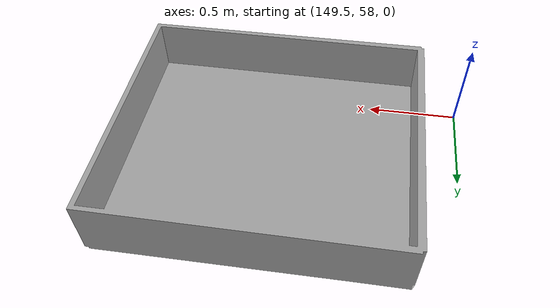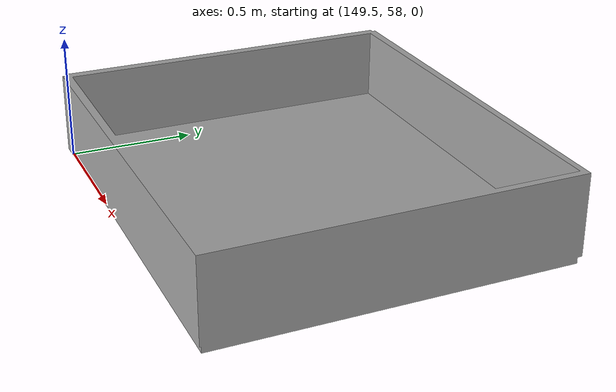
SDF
<sdf version="1.6">
 <world name="default">
  <model name="Red_Mailbox">
   <link name="link">
    <inertial>
     <mass>40</mass>
     <inertia><ixx>0.5</ixx><ixy>0</ixy><ixz>0</ixz><iyy>0.5</iyy><iyz>0</iyz><izz>1</izz></inertia>
    </inertial>
    <visual name="ModelPreview_1::link::visual_1">
     <geometry><mesh><uri>model://Red_Mailbox/meshes/red.dae</uri><scale>1 1 1</scale></mesh></geometry>
     <material><shader type="pixel"/></material>
    </visual>
    <visual name="visual">
     <geometry><mesh><uri>model://Red_Mailbox/meshes/red.dae</uri><scale>1 1 1</scale></mesh></geometry>
     <material>
      <emissive>1 0 0 0</emissive>
      <shader type="vertex"><normal_map>__default__</normal_map></shader>
     </material>
    </visual>
    <collision name="collision">
     <geometry><box><size>0.75 0.65 0.3</size></box></geometry>
     <surface>
      <friction>
       <ode><mu>1</mu><mu2>1</mu2><fdir1>0 0 0</fdir1><slip1>0</slip1><slip2>0</slip2></ode>
       <torsional>
        <coefficient>1</coefficient>
        <patch_radius>0</patch_radius>
        <surface_radius>0</surface_radius>
        <use_patch_radius>1</use_patch_radius>
        <ode><slip>0</slip></ode>
       </torsional>
      </friction>
      <bounce><restitution_coefficient>0</restitution_coefficient><threshold>1e+06</threshold></bounce>
      <contact>
       <collide_without_contact>0</collide_without_contact>
       <collide_without_contact_bitmask>1</collide_without_contact_bitmask>
       <collide_bitmask>1</collide_bitmask>
       <ode>
        <soft_cfm>0</soft_cfm>
        <soft_erp>0.2</soft_erp>
        <kp>1e+13</kp>
        <kd>1</kd>
        <max_vel>0.1</max_vel>
        <min_depth>0.001</min_depth>
       </ode>
       <bullet>
        <split_impulse>1</split_impulse>
        <split_impulse_penetration_threshold>-0.01</split_impulse_penetration_threshold>
        <soft_cfm>0</soft_cfm>
        <soft_erp>0.2</soft_erp>
        <kp>1e+13</kp>
        <kd>1</kd>
       </bullet>
      </contact>
     </surface>
    </collision>
   </link>
   <static>0</static>
   <pose>150.514 58.5873 0.14902 0 -0 0</pose>
  </model>
 </world>
</sdf>
